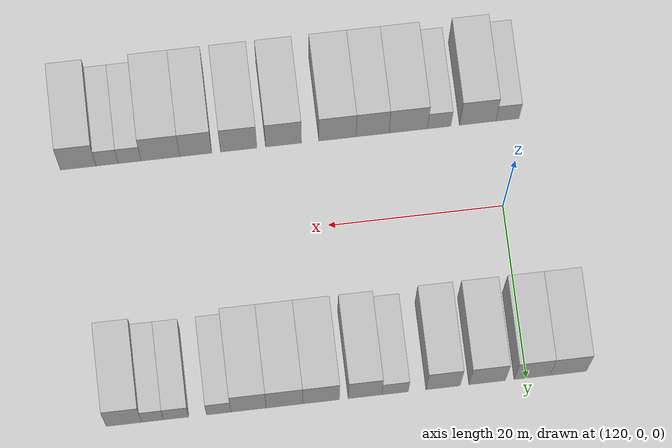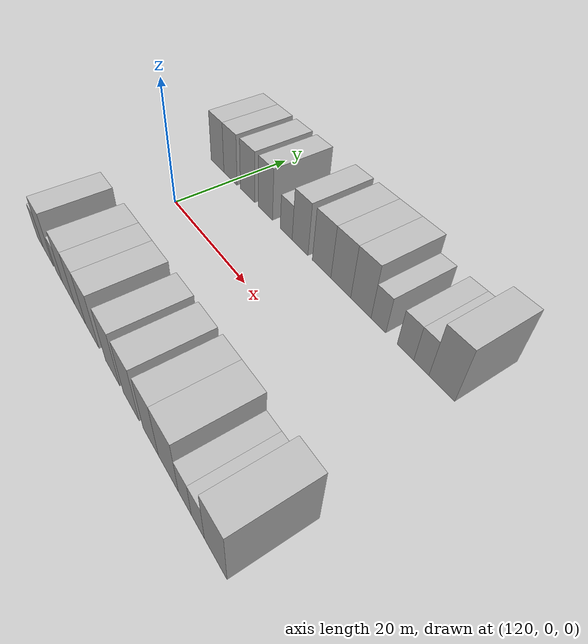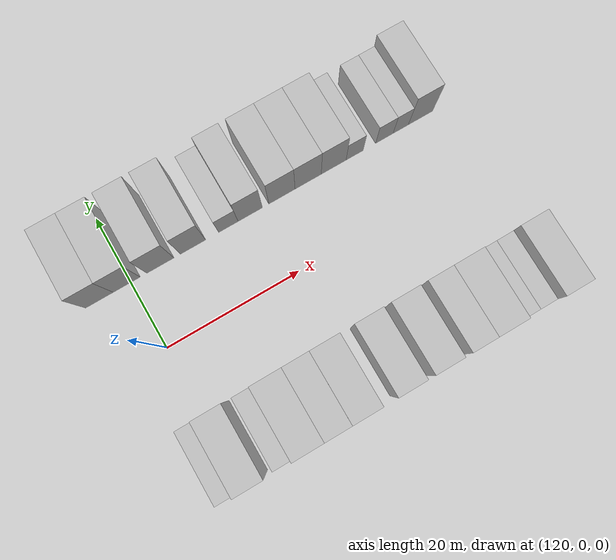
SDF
<sdf version="1.6">
 <world name="default">
  <model name="building_27">
   <static>1</static>
   <pose>115.3012 15.0000 0 0.000000 0.000000 1.570796</pose>
   <link name="link">
    <pose>0 0 4.50 0 0 0</pose>
    <collision name="collision"><geometry><box><size>10.0000 4.1226 9.0000</size></box></geometry></collision>
    <visual name="visual">
     <cast_shadows>0</cast_shadows>
     <geometry><box><size>10.0000 4.1226 9.0000</size></box></geometry>
     <material>
      <script>
       <uri>model://HANNAS_wall/materials/scripts</uri>
       <uri>model://HANNAS_wall/materials/textures</uri>
       <name>vrc/HANNAS_wall</name>
      </script>
     </material>
    </visual>
   </link>
  </model>
  <model name="building_28">
   <static>1</static>
   <pose>119.3822 15.0000 0 0.000000 0.000000 1.570796</pose>
   <link name="link">
    <pose>0 0 4.50 0 0 0</pose>
    <collision name="collision"><geometry><box><size>10.0000 4.0395 9.0000</size></box></geometry></collision>
    <visual name="visual">
     <cast_shadows>0</cast_shadows>
     <geometry><box><size>10.0000 4.0395 9.0000</size></box></geometry>
     <material>
      <script>
       <uri>model://HANNAS_wall/materials/scripts</uri>
       <uri>model://HANNAS_wall/materials/textures</uri>
       <name>vrc/HANNAS_wall</name>
      </script>
     </material>
    </visual>
   </link>
  </model>
  <model name="building_29">
   <static>1</static>
   <pose>124.4516 15.0000 0 0.000000 0.000000 1.570796</pose>
   <link name="link">
    <pose>0 0 4.50 0 0 0</pose>
    <collision name="collision"><geometry><box><size>10.0000 4.0994 9.0000</size></box></geometry></collision>
    <visual name="visual">
     <cast_shadows>0</cast_shadows>
     <geometry><box><size>10.0000 4.0994 9.0000</size></box></geometry>
     <material>
      <script>
       <uri>model://HANNAS_wall/materials/scripts</uri>
       <uri>model://HANNAS_wall/materials/textures</uri>
       <name>vrc/HANNAS_wall</name>
      </script>
     </material>
    </visual>
   </link>
  </model>
  <model name="building_30">
   <static>1</static>
   <pose>129.4214 15.0000 0 0.000000 0.000000 1.570796</pose>
   <link name="link">
    <pose>0 0 4.50 0 0 0</pose>
    <collision name="collision"><geometry><box><size>10.0000 3.8402 9.0000</size></box></geometry></collision>
    <visual name="visual">
     <cast_shadows>0</cast_shadows>
     <geometry><box><size>10.0000 3.8402 9.0000</size></box></geometry>
     <material>
      <script>
       <uri>model://HANNAS_wall/materials/scripts</uri>
       <uri>model://HANNAS_wall/materials/textures</uri>
       <name>vrc/HANNAS_wall</name>
      </script>
     </material>
    </visual>
   </link>
  </model>
  <model name="building_31">
   <static>1</static>
   <pose>134.8365 15.0000 0 0.000000 0.000000 1.570796</pose>
   <link name="link">
    <pose>0 0 3.00 0 0 0</pose>
    <collision name="collision"><geometry><box><size>10.0000 2.9901 6.0000</size></box></geometry></collision>
    <visual name="visual">
     <cast_shadows>0</cast_shadows>
     <geometry><box><size>10.0000 2.9901 6.0000</size></box></geometry>
     <material>
      <script>
       <uri>model://HANNAS_wall/materials/scripts</uri>
       <uri>model://HANNAS_wall/materials/textures</uri>
       <name>vrc/HANNAS_wall</name>
      </script>
     </material>
    </visual>
   </link>
  </model>
  <model name="building_32">
   <static>1</static>
   <pose>138.2175 15.0000 0 0.000000 0.000000 1.570796</pose>
   <link name="link">
    <pose>0 0 4.50 0 0 0</pose>
    <collision name="collision"><geometry><box><size>10.0000 3.7719 9.0000</size></box></geometry></collision>
    <visual name="visual">
     <cast_shadows>0</cast_shadows>
     <geometry><box><size>10.0000 3.7719 9.0000</size></box></geometry>
     <material>
      <script>
       <uri>model://HANNAS_wall/materials/scripts</uri>
       <uri>model://HANNAS_wall/materials/textures</uri>
       <name>vrc/HANNAS_wall</name>
      </script>
     </material>
    </visual>
   </link>
  </model>
  <model name="building_33">
   <static>1</static>
   <pose>143.1482 15.0000 0 0.000000 0.000000 1.570796</pose>
   <link name="link">
    <pose>0 0 4.50 0 0 0</pose>
    <collision name="collision"><geometry><box><size>10.0000 4.0895 9.0000</size></box></geometry></collision>
    <visual name="visual">
     <cast_shadows>0</cast_shadows>
     <geometry><box><size>10.0000 4.0895 9.0000</size></box></geometry>
     <material>
      <script>
       <uri>model://HANNAS_wall/materials/scripts</uri>
       <uri>model://HANNAS_wall/materials/textures</uri>
       <name>vrc/HANNAS_wall</name>
      </script>
     </material>
    </visual>
   </link>
  </model>
  <model name="building_34">
   <static>1</static>
   <pose>147.2556 15.0000 0 0.000000 0.000000 1.570796</pose>
   <link name="link">
    <pose>0 0 4.50 0 0 0</pose>
    <collision name="collision"><geometry><box><size>10.0000 4.1252 9.0000</size></box></geometry></collision>
    <visual name="visual">
     <cast_shadows>0</cast_shadows>
     <geometry><box><size>10.0000 4.1252 9.0000</size></box></geometry>
     <material>
      <script>
       <uri>model://HANNAS_wall/materials/scripts</uri>
       <uri>model://HANNAS_wall/materials/textures</uri>
       <name>vrc/HANNAS_wall</name>
      </script>
     </material>
    </visual>
   </link>
  </model>
  <model name="building_35">
   <static>1</static>
   <pose>151.2956 15.0000 0 0.000000 0.000000 1.570796</pose>
   <link name="link">
    <pose>0 0 4.50 0 0 0</pose>
    <collision name="collision"><geometry><box><size>10.0000 3.9548 9.0000</size></box></geometry></collision>
    <visual name="visual">
     <cast_shadows>0</cast_shadows>
     <geometry><box><size>10.0000 3.9548 9.0000</size></box></geometry>
     <material>
      <script>
       <uri>model://HANNAS_wall/materials/scripts</uri>
       <uri>model://HANNAS_wall/materials/textures</uri>
       <name>vrc/HANNAS_wall</name>
      </script>
     </material>
    </visual>
   </link>
  </model>
  <model name="building_36">
   <static>1</static>
   <pose>154.6378 15.0000 0 0.000000 0.000000 1.570796</pose>
   <link name="link">
    <pose>0 0 3.00 0 0 0</pose>
    <collision name="collision"><geometry><box><size>10.0000 2.7296 6.0000</size></box></geometry></collision>
    <visual name="visual">
     <cast_shadows>0</cast_shadows>
     <geometry><box><size>10.0000 2.7296 6.0000</size></box></geometry>
     <material>
      <script>
       <uri>model://HANNAS_wall/materials/scripts</uri>
       <uri>model://HANNAS_wall/materials/textures</uri>
       <name>vrc/HANNAS_wall</name>
      </script>
     </material>
    </visual>
   </link>
  </model>
  <model name="building_37">
   <static>1</static>
   <pose>159.4041 15.0000 0 0.000000 0.000000 1.570796</pose>
   <link name="link">
    <pose>0 0 3.00 0 0 0</pose>
    <collision name="collision"><geometry><box><size>10.0000 2.8030 6.0000</size></box></geometry></collision>
    <visual name="visual">
     <cast_shadows>0</cast_shadows>
     <geometry><box><size>10.0000 2.8030 6.0000</size></box></geometry>
     <material>
      <script>
       <uri>model://HANNAS_wall/materials/scripts</uri>
       <uri>model://HANNAS_wall/materials/textures</uri>
       <name>vrc/HANNAS_wall</name>
      </script>
     </material>
    </visual>
   </link>
  </model>
  <model name="building_38">
   <static>1</static>
   <pose>162.0353 15.0000 0 0.000000 0.000000 1.570796</pose>
   <link name="link">
    <pose>0 0 3.00 0 0 0</pose>
    <collision name="collision"><geometry><box><size>10.0000 2.4594 6.0000</size></box></geometry></collision>
    <visual name="visual">
     <cast_shadows>0</cast_shadows>
     <geometry><box><size>10.0000 2.4594 6.0000</size></box></geometry>
     <material>
      <script>
       <uri>model://HANNAS_wall/materials/scripts</uri>
       <uri>model://HANNAS_wall/materials/textures</uri>
       <name>vrc/HANNAS_wall</name>
      </script>
     </material>
    </visual>
   </link>
  </model>
  <model name="building_39">
   <static>1</static>
   <pose>165.2494 15.0000 0 0.000000 0.000000 1.570796</pose>
   <link name="link">
    <pose>0 0 4.50 0 0 0</pose>
    <collision name="collision"><geometry><box><size>10.0000 3.9687 9.0000</size></box></geometry></collision>
    <visual name="visual">
     <cast_shadows>0</cast_shadows>
     <geometry><box><size>10.0000 3.9687 9.0000</size></box></geometry>
     <material>
      <script>
       <uri>model://HANNAS_wall/materials/scripts</uri>
       <uri>model://HANNAS_wall/materials/textures</uri>
       <name>vrc/HANNAS_wall</name>
      </script>
     </material>
    </visual>
   </link>
  </model>
  <model name="building_80">
   <static>1</static>
   <pose>118.1825 -15.0000 0 0.000000 0.000000 1.570796</pose>
   <link name="link">
    <pose>0 0 3.00 0 0 0</pose>
    <collision name="collision"><geometry><box><size>10.0000 2.6912 6.0000</size></box></geometry></collision>
    <visual name="visual">
     <cast_shadows>0</cast_shadows>
     <geometry><box><size>10.0000 2.6912 6.0000</size></box></geometry>
     <material>
      <script>
       <uri>model://HANNAS_wall/materials/scripts</uri>
       <uri>model://HANNAS_wall/materials/textures</uri>
       <name>vrc/HANNAS_wall</name>
      </script>
     </material>
    </visual>
   </link>
  </model>
  <model name="building_81">
   <static>1</static>
   <pose>121.6121 -15.0000 0 0.000000 0.000000 1.570796</pose>
   <link name="link">
    <pose>0 0 4.50 0 0 0</pose>
    <collision name="collision"><geometry><box><size>10.0000 4.1680 9.0000</size></box></geometry></collision>
    <visual name="visual">
     <cast_shadows>0</cast_shadows>
     <geometry><box><size>10.0000 4.1680 9.0000</size></box></geometry>
     <material>
      <script>
       <uri>model://HANNAS_wall/materials/scripts</uri>
       <uri>model://HANNAS_wall/materials/textures</uri>
       <name>vrc/HANNAS_wall</name>
      </script>
     </material>
    </visual>
   </link>
  </model>
  <model name="building_82">
   <static>1</static>
   <pose>126.0478 -15.0000 0 0.000000 0.000000 1.570796</pose>
   <link name="link">
    <pose>0 0 3.00 0 0 0</pose>
    <collision name="collision"><geometry><box><size>10.0000 2.7035 6.0000</size></box></geometry></collision>
    <visual name="visual">
     <cast_shadows>0</cast_shadows>
     <geometry><box><size>10.0000 2.7035 6.0000</size></box></geometry>
     <material>
      <script>
       <uri>model://HANNAS_wall/materials/scripts</uri>
       <uri>model://HANNAS_wall/materials/textures</uri>
       <name>vrc/HANNAS_wall</name>
      </script>
     </material>
    </visual>
   </link>
  </model>
  <model name="building_83">
   <static>1</static>
   <pose>129.6201 -15.0000 0 0.000000 0.000000 1.570796</pose>
   <link name="link">
    <pose>0 0 4.50 0 0 0</pose>
    <collision name="collision"><geometry><box><size>10.0000 4.4412 9.0000</size></box></geometry></collision>
    <visual name="visual">
     <cast_shadows>0</cast_shadows>
     <geometry><box><size>10.0000 4.4412 9.0000</size></box></geometry>
     <material>
      <script>
       <uri>model://HANNAS_wall/materials/scripts</uri>
       <uri>model://HANNAS_wall/materials/textures</uri>
       <name>vrc/HANNAS_wall</name>
      </script>
     </material>
    </visual>
   </link>
  </model>
  <model name="building_84">
   <static>1</static>
   <pose>133.7398 -15.0000 0 0.000000 0.000000 1.570796</pose>
   <link name="link">
    <pose>0 0 4.50 0 0 0</pose>
    <collision name="collision"><geometry><box><size>10.0000 3.7983 9.0000</size></box></geometry></collision>
    <visual name="visual">
     <cast_shadows>0</cast_shadows>
     <geometry><box><size>10.0000 3.7983 9.0000</size></box></geometry>
     <material>
      <script>
       <uri>model://HANNAS_wall/materials/scripts</uri>
       <uri>model://HANNAS_wall/materials/textures</uri>
       <name>vrc/HANNAS_wall</name>
      </script>
     </material>
    </visual>
   </link>
  </model>
  <model name="building_85">
   <static>1</static>
   <pose>137.7693 -15.0000 0 0.000000 0.000000 1.570796</pose>
   <link name="link">
    <pose>0 0 4.50 0 0 0</pose>
    <collision name="collision"><geometry><box><size>10.0000 4.2606 9.0000</size></box></geometry></collision>
    <visual name="visual">
     <cast_shadows>0</cast_shadows>
     <geometry><box><size>10.0000 4.2606 9.0000</size></box></geometry>
     <material>
      <script>
       <uri>model://HANNAS_wall/materials/scripts</uri>
       <uri>model://HANNAS_wall/materials/textures</uri>
       <name>vrc/HANNAS_wall</name>
      </script>
     </material>
    </visual>
   </link>
  </model>
  <model name="building_86">
   <static>1</static>
   <pose>143.9626 -15.0000 0 0.000000 0.000000 1.570796</pose>
   <link name="link">
    <pose>0 0 4.50 0 0 0</pose>
    <collision name="collision"><geometry><box><size>10.0000 4.1261 9.0000</size></box></geometry></collision>
    <visual name="visual">
     <cast_shadows>0</cast_shadows>
     <geometry><box><size>10.0000 4.1261 9.0000</size></box></geometry>
     <material>
      <script>
       <uri>model://HANNAS_wall/materials/scripts</uri>
       <uri>model://HANNAS_wall/materials/textures</uri>
       <name>vrc/HANNAS_wall</name>
      </script>
     </material>
    </visual>
   </link>
  </model>
  <model name="building_87">
   <static>1</static>
   <pose>149.1090 -15.0000 0 0.000000 0.000000 1.570796</pose>
   <link name="link">
    <pose>0 0 4.50 0 0 0</pose>
    <collision name="collision"><geometry><box><size>10.0000 4.1667 9.0000</size></box></geometry></collision>
    <visual name="visual">
     <cast_shadows>0</cast_shadows>
     <geometry><box><size>10.0000 4.1667 9.0000</size></box></geometry>
     <material>
      <script>
       <uri>model://HANNAS_wall/materials/scripts</uri>
       <uri>model://HANNAS_wall/materials/textures</uri>
       <name>vrc/HANNAS_wall</name>
      </script>
     </material>
    </visual>
   </link>
  </model>
  <model name="building_88">
   <static>1</static>
   <pose>154.0344 -15.0000 0 0.000000 0.000000 1.570796</pose>
   <link name="link">
    <pose>0 0 4.50 0 0 0</pose>
    <collision name="collision"><geometry><box><size>10.0000 3.6840 9.0000</size></box></geometry></collision>
    <visual name="visual">
     <cast_shadows>0</cast_shadows>
     <geometry><box><size>10.0000 3.6840 9.0000</size></box></geometry>
     <material>
      <script>
       <uri>model://HANNAS_wall/materials/scripts</uri>
       <uri>model://HANNAS_wall/materials/textures</uri>
       <name>vrc/HANNAS_wall</name>
      </script>
     </material>
    </visual>
   </link>
  </model>
  <model name="building_89">
   <static>1</static>
   <pose>158.0920 -15.0000 0 0.000000 0.000000 1.570796</pose>
   <link name="link">
    <pose>0 0 4.50 0 0 0</pose>
    <collision name="collision"><geometry><box><size>10.0000 4.4312 9.0000</size></box></geometry></collision>
    <visual name="visual">
     <cast_shadows>0</cast_shadows>
     <geometry><box><size>10.0000 4.4312 9.0000</size></box></geometry>
     <material>
      <script>
       <uri>model://HANNAS_wall/materials/scripts</uri>
       <uri>model://HANNAS_wall/materials/textures</uri>
       <name>vrc/HANNAS_wall</name>
      </script>
     </material>
    </visual>
   </link>
  </model>
  <model name="building_90">
   <static>1</static>
   <pose>161.6257 -15.0000 0 0.000000 0.000000 1.570796</pose>
   <link name="link">
    <pose>0 0 3.00 0 0 0</pose>
    <collision name="collision"><geometry><box><size>10.0000 2.6363 6.0000</size></box></geometry></collision>
    <visual name="visual">
     <cast_shadows>0</cast_shadows>
     <geometry><box><size>10.0000 2.6363 6.0000</size></box></geometry>
     <material>
      <script>
       <uri>model://HANNAS_wall/materials/scripts</uri>
       <uri>model://HANNAS_wall/materials/textures</uri>
       <name>vrc/HANNAS_wall</name>
      </script>
     </material>
    </visual>
   </link>
  </model>
  <model name="building_91">
   <static>1</static>
   <pose>164.2075 -15.0000 0 0.000000 0.000000 1.570796</pose>
   <link name="link">
    <pose>0 0 3.00 0 0 0</pose>
    <collision name="collision"><geometry><box><size>10.0000 2.5273 6.0000</size></box></geometry></collision>
    <visual name="visual">
     <cast_shadows>0</cast_shadows>
     <geometry><box><size>10.0000 2.5273 6.0000</size></box></geometry>
     <material>
      <script>
       <uri>model://HANNAS_wall/materials/scripts</uri>
       <uri>model://HANNAS_wall/materials/textures</uri>
       <name>vrc/HANNAS_wall</name>
      </script>
     </material>
    </visual>
   </link>
  </model>
  <model name="building_92">
   <static>1</static>
   <pose>167.5120 -15.0000 0 0.000000 0.000000 1.570796</pose>
   <link name="link">
    <pose>0 0 4.50 0 0 0</pose>
    <collision name="collision"><geometry><box><size>10.0000 4.0818 9.0000</size></box></geometry></collision>
    <visual name="visual">
     <cast_shadows>0</cast_shadows>
     <geometry><box><size>10.0000 4.0818 9.0000</size></box></geometry>
     <material>
      <script>
       <uri>model://HANNAS_wall/materials/scripts</uri>
       <uri>model://HANNAS_wall/materials/textures</uri>
       <name>vrc/HANNAS_wall</name>
      </script>
     </material>
    </visual>
   </link>
  </model>
 </world>
</sdf>
